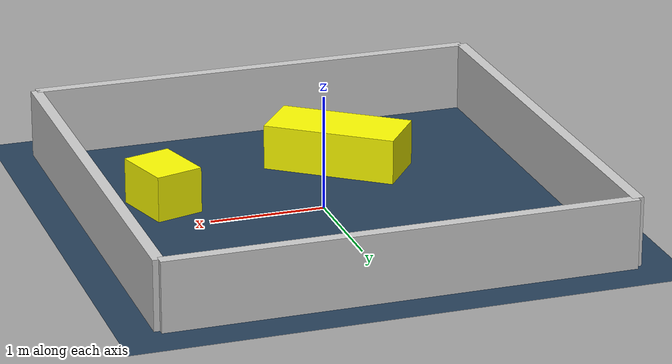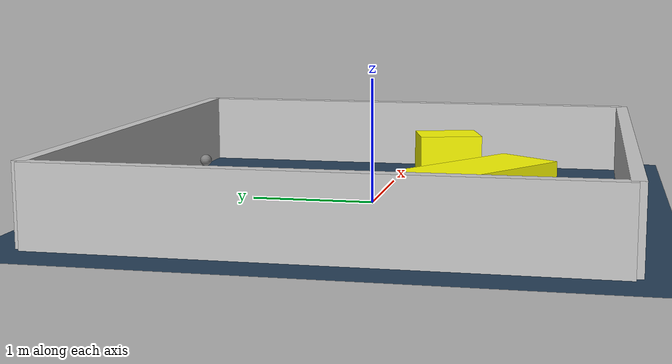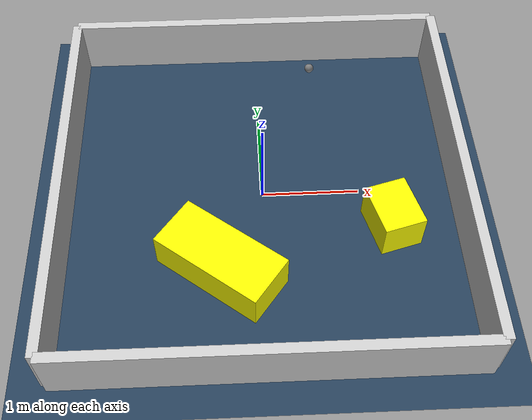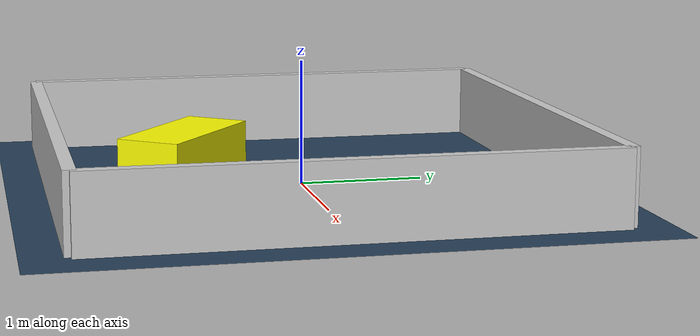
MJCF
<?xml version="1.0" ?>
<mujoco model="generated_environment">
  <option timestep="0.01" integrator="RK4" cone="elliptic"/>
  <default>
    <geom density="1"/>
  </default>
  <asset>
    <texture builtin="gradient" height="3072" rgb1="0.3 0.5 0.7" rgb2="0 0 0" type="skybox" width="512"/>
    <texture builtin="checker" height="300" mark="edge" markrgb="0.8 0.8 0.8" name="groundplane" rgb1="0.2 0.3 0.4" rgb2="0.1 0.2 0.3" type="2d" width="300"/>
    <material name="groundplane" reflectance="0.2" texrepeat="5 5" texture="groundplane" texuniform="true"/>
    <material name="robot" rgba="0.0 1.0 0.0 1"/>
  </asset>
  <worldbody>
    <light dir="0 0 -1" directional="true" pos="0 0 1.5"/>
    <geom condim="4" friction="1.0 0.005 0.001" material="groundplane" name="floor" size="0 0 0.05" type="plane"/>
    <body name="walls">
      <geom name="wall_1" condim="4" pos="-2.0 0.0 0.3" rgba="0.800000011920929 0.800000011920929 0.800000011920929 1.0" size="0.05 2.0 0.3" type="box"/>
      <geom name="wall_2" condim="4" pos="2.0 0.0 0.3" rgba="0.800000011920929 0.800000011920929 0.800000011920929 1.0" size="0.05 2.0 0.3" type="box"/>
      <geom name="wall_3" condim="4" pos="0.0 -2.0 0.3" rgba="0.800000011920929 0.800000011920929 0.800000011920929 1.0" size="2.0 0.05 0.3" type="box"/>
      <geom name="wall_4" condim="4" pos="0.0 2.0 0.3" rgba="0.800000011920929 0.800000011920929 0.800000011920929 1.0" size="2.0 0.05 0.3" type="box"/>
    </body>
    <body name="robot">
      <joint name="joint_x" type="slide" pos="0 0 0" axis="1 0 0"/>
      <joint name="joint_y" type="slide" pos="0 0 0" axis="0 1 0"/>
      <geom name="robot" type="sphere" pos="0.6042862320440268 1.6195484899717876 0.2" size="0.05" mass="5." friction="1.0 0.005 0.0001" condim="4"/>
      <site name="sensor_ball"/>
    </body>
    <body name="obstacle_1_movable">
      <geom name="obstacle_1_movable" condim="4" pos="1.2827851114249775 -0.45119873987752324 0.2" euler="0 0 105.60482520263005" friction="1.0 0.005 0.001" rgba="1 1 0 1" size="0.2725158737191717 0.21373783024522708 0.2" type="box" mass="0.1"/>
      <joint type="free"/>
    </body>
    <body name="obstacle_2_movable">
      <geom name="obstacle_2_movable" condim="4" pos="-0.43024723183007274 -0.8956189085428518 0.2" euler="0 0 232.8886690037412" friction="1.0 0.005 0.001" rgba="1 1 0 1" size="0.27134404092846043 0.5916632793070078 0.2" type="box" mass="0.1"/>
      <joint type="free"/>
    </body>
  </worldbody>
  <actuator>
    <motor name="actuator_x" joint="joint_x" gear="1" ctrlrange="-1 1"/>
    <motor name="actuator_y" joint="joint_y" gear="1" ctrlrange="-1 1"/>
  </actuator>
</mujoco>
